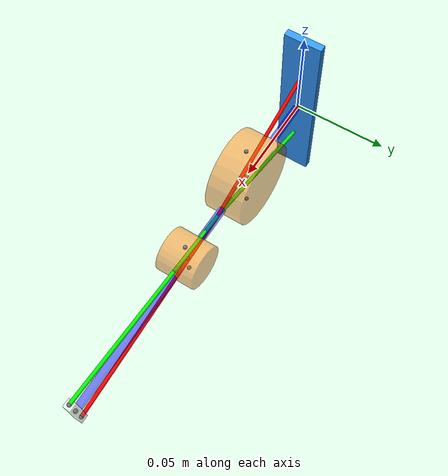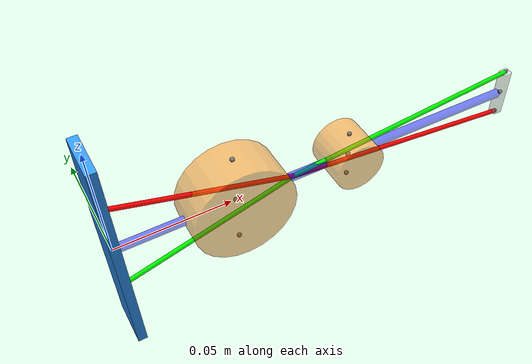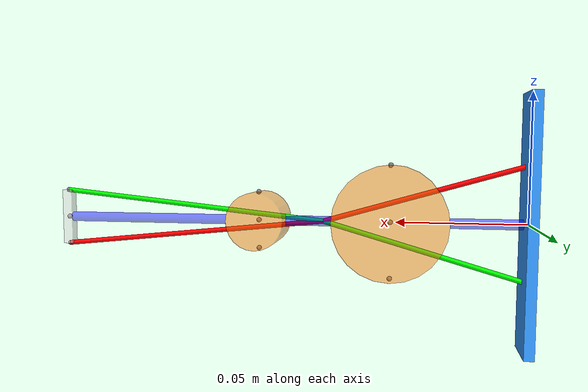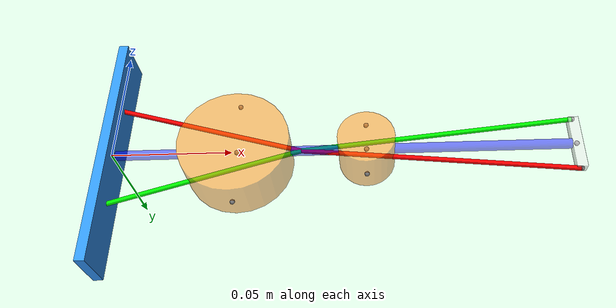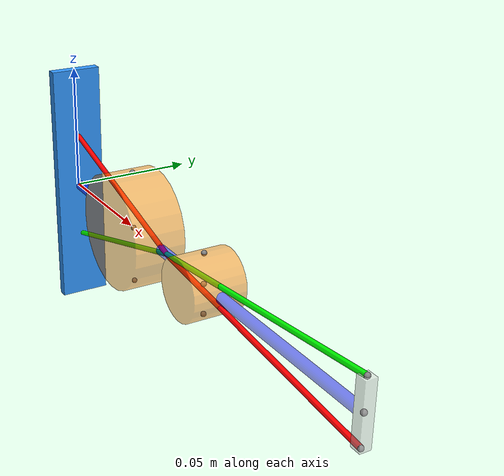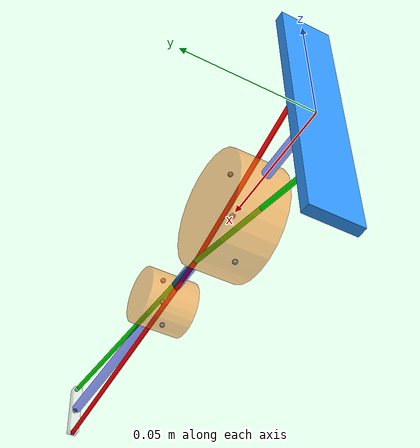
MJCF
<?xml version='1.0' encoding='UTF-8'?>
<mujoco>
<!-- Параметры 2R механизма  -->
R1, m	R2, m	a, m	b, m	c, m
0.045	0.023	0.052	0.084	0.053

    <option timestep="1e-4"/>
    <option integrator="RK4"/>
    <option gravity="0 0 -9.8"/>
<!-- Настройки сцены -->
    <asset>
        <texture type="skybox" builtin="gradient" rgb1="0.85 0.9 1"  rgb2="0.65 0.7 0.8"  width="265" height="256"/>
        <texture name="grid" type="2d" builtin="checker" rgb1="0.1 0.1 0.1" rgb2="0.6 0.6 0.6" width="300" height="300"/>
        <material name="grid" texture="grid" texrepeat="10 10" reflectance="0.2"/>
        <material name="init_mat" rgba="0.85 0.85 0.85 1"/>
        <material name="bright_blue" rgba="0.2 0.6 1 1"/>
    </asset>
<!-- Создание Объектов -->
    <worldbody>
        <light pos="0 0 10"/>
        <geom type="plane" size="0.5 0.5 0.1" material="grid" pos = "0 0 -0.5"/>
        <camera name="side view" pos="0.1 -1.5 1.0" euler="0 90 0" fovy="60"/>
        <camera name="upper view" pos="0 0 1.5" euler="0 0 0"/>
        <!-- Начальная плоскость -->
        <body name="Init" pos="0 0 0" euler="0 90 0">
            <geom type="box" size=" 0.05  0.01 0.002" material="bright_blue"/>
            <site name="Tendon1_pos" pos="0.0225 0 0" type="sphere" size="0.001"/>
            <site name="Tendon2_pos" pos="-0.0225 0 0" type="sphere" size="0.001"/>
        </body>
        <!-- Создание объекта для удержания каретки в горизантальном положении -->
        <body name="carriage_vertical" pos="0.189 0 0">
            <site name="carriage_weld" pos="0 0 0" type="sphere" size="0.001"/>
            <joint name="cv_x" type="slide" axis="1 0 0"/>
            <joint name="cv_y" type="slide" axis="0 0 1"/>
            <geom type="box" size="0.0002 0.0002 0.0002 " mass="0.01" contype="0"/>
        </body>
        <!-- Создание вложенных объектов, описывающих систему 2R механизма-->
        <!-- Первое звено -->
        <body name = "Link1" pos = '0 0 0' euler = '0 0 0'>
            <geom type = "cylinder" pos = "0.026 0 0" euler = "0 90 0" mass = "0.01" size="0.002 0.026" rgba="0 0 1 0.5"/>
            <!-- Второе звено -->
            <body name = "Link2" pos = '0.052 0 0' euler = '0 0 0'>
                <joint name="A" type="hinge" axis="0 1 0" stiffness="0.1"  damping="0.5"/>
                <geom type="cylinder" mass = "0.01"   pos="0.0265 0 0" size="0.002 0.0265" euler="0 90 0" rgba="0 0 1 0.5"/>
                <!-- Блок цилиндр 1 -->
                <geom name="Block1" type="cylinder" size="0.0225 0.01" pos="0 0 0" euler="90 0 0" rgba="1 0.5 0 0.5" mass = "0.001" />
                <site name="Tendon2_b1" pos="0 0 -0.022515" type="sphere" size="0.001"/>
                <site name="Tendon1_b1" pos="0 0 0.022515" type="sphere" size="0.001"/>
                <site name="SB1" pos="0 0 0" type="sphere" size="0.001"/>
                <!-- Третье звено -->
                <body name = "Link3" pos = '0.053 0 0' euler = '0 0 0'>
                    <!-- #Создаем Joint -->
                    <joint name="B" type="hinge" axis="0 1 0" stiffness="0.1" damping="0.5" />
                    <geom type="cylinder" pos="0.042 0 0" size="0.002 0.042" euler="0 90 0" rgba="0 0 1 0.5" mass = "0.01"  />
                    <!-- Блок цилиндр 2 -->
                    <geom name="Block2" type="cylinder" size="0.0115 0.01" pos="0 0 0" euler = "90 0 0" mass = "0.01"  rgba="1 0.5 0 0.5"/>
                    <site name="Tendon1_b2" pos="0 0 0.01150001" type="sphere" size="0.001"/>
                    <site name="Tendon2_b2" pos="0 0 -0.01150001" type="sphere" size="0.001"/>
                    <site name="SB2" pos="0 0 0" type="sphere" size="0.001"/>
                    <site name="carriage" pos="0.084 0 0" type="sphere" size="0.001"/>
                    <!-- #Создаем Каретку -->
                    <body name = "Carriage" pos = '0.084 0 0' euler = '0 0 0'>
                        <geom type="box" size="0.002 0.002 0.0115" pos="0 0 0" rgba="0.9 0.9 0.9 0.5" mass = "0.01"/>
                        <!-- #Добавляем sites для тендонов каретки-->
                        <site name="Tendon1_end" pos="0 0 0.0115" type="sphere" size="0.001"/>
                        <site name="Tendon2_end" pos="0 0 -0.0115" type="sphere" size="0.001"/>
                    </body>
                </body>
            </body>
        </body>
        <!-- Фиктивные точки для корректного построения маршрута тендона -->
        <body name="Fictionous point1" pos="0.0785 0 0" >
            <geom type="box" size="0.00001 0.0001 0.0001" contype="0" mass = "0.001"/>
            <site name="FP1" pos="0 0 0" type="cylinder" size="0.0001 0.00001"/>
            <joint name="F1x" type="slide" axis="1 0 0"/>
            <joint name="F1y" type="slide" axis="0 0 1"/>
        </body>
     </worldbody>
    <!-- Тендон красный -->
     <tendon>
        <spatial name = "Tendon1" width = "0.001" stiffness = "10" damping = "2" springlength = "0.005" rgba="1 0 0 1">
            <site site = "Tendon2_pos"/>
            <geom geom="Block1" sidesite="Tendon1_b1"/>
            <site site = "FP1"/>
            <geom geom="Block2" sidesite="Tendon2_b2"/>
            <site site="Tendon2_end"/>
        </spatial>

    </tendon>
        <!-- Тендон зелёный -->
       <tendon>
        <spatial name = "Tendon2" width = "0.001" stiffness = "10" damping = "2" springlength = "0.005" rgba="0 1 0 1">
            <site site = "Tendon1_pos"/>
            <geom geom="Block1" sidesite="Tendon2_b1"/>
            <site site = "FP1"/>
            <geom geom="Block2" sidesite="Tendon1_b2"/>
            <site site="Tendon1_end"/>
        </spatial>

    </tendon>
        <!-- Ограничение удерживаающее каретку в горизантальном положении -->
       <equality>
            <connect site1="FP1" site2="SB1"/>
            <connect site1="FP1" site2="SB2"/>
        </equality>
            <!-- Привоода тендонов -->

        <actuator>
            <motor name="motor_t1" joint="A" gear="3" />
            <motor name="motor_t2" joint="B" gear="3" />
        </actuator>

        <sensor>
            <framepos objtype="site" objname="carriage"/>
             <!-- Сенсоры позиции тендонов -->
            <jointpos joint="A" name="q1"/>
            <jointvel joint="A" name="dq1"/>
            <jointpos joint="B" name="q2"/>
            <jointvel joint="B" name="dq2"/>
        </sensor>

</mujoco>
